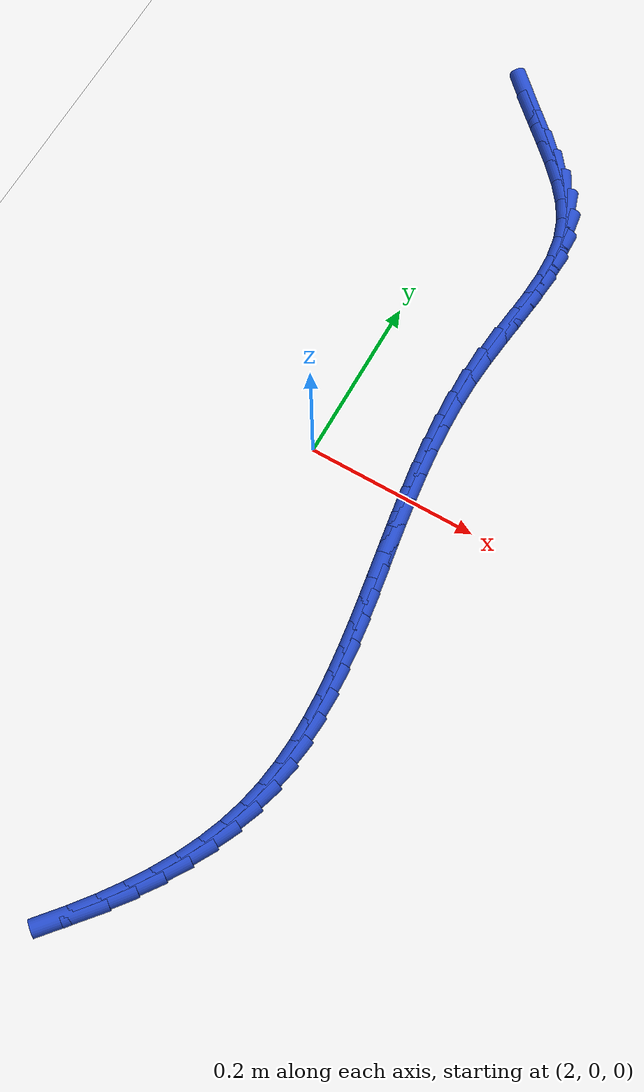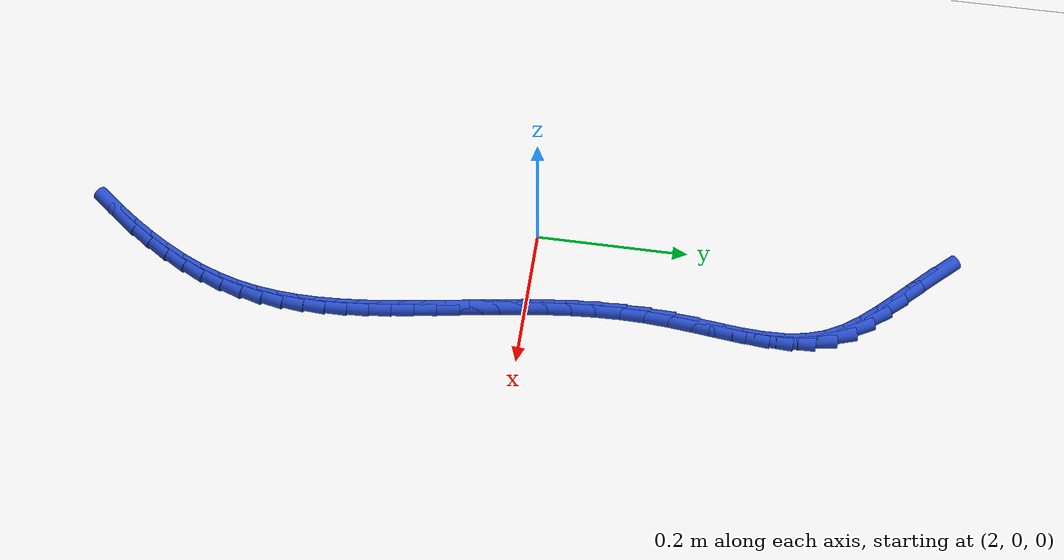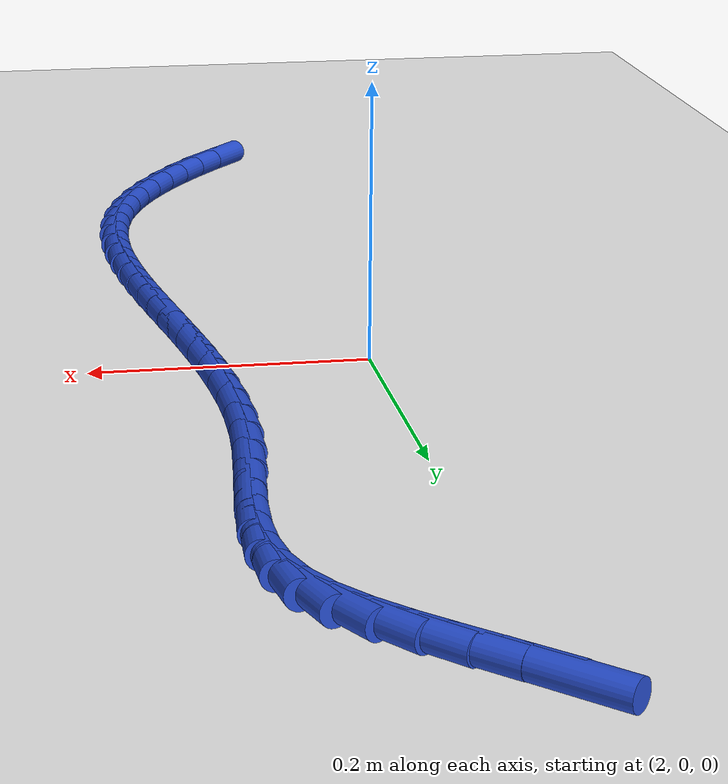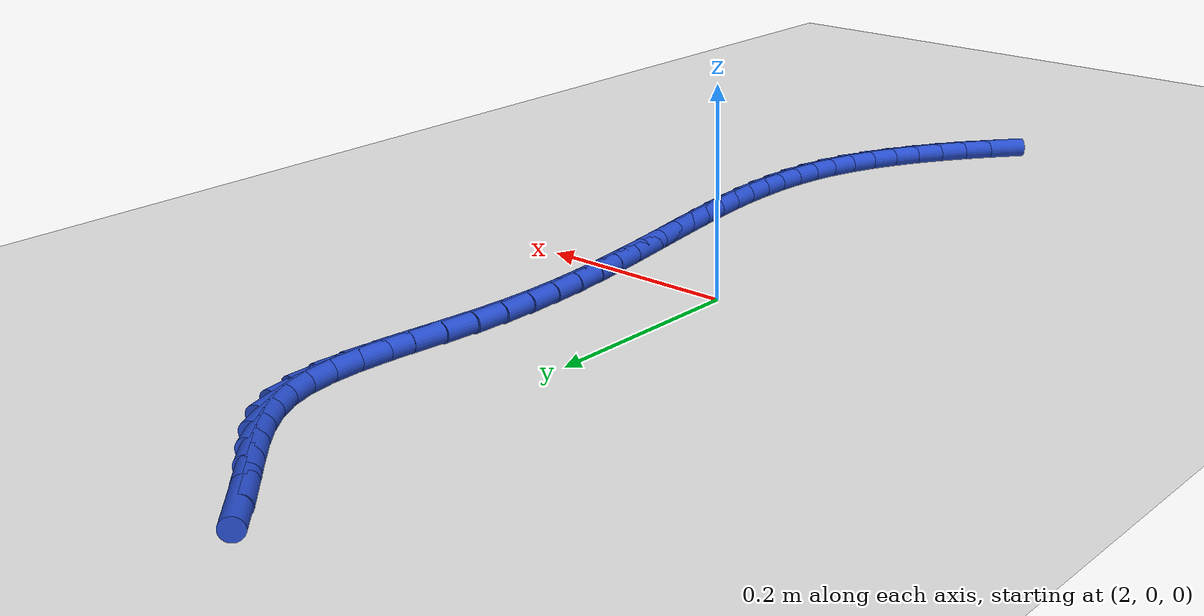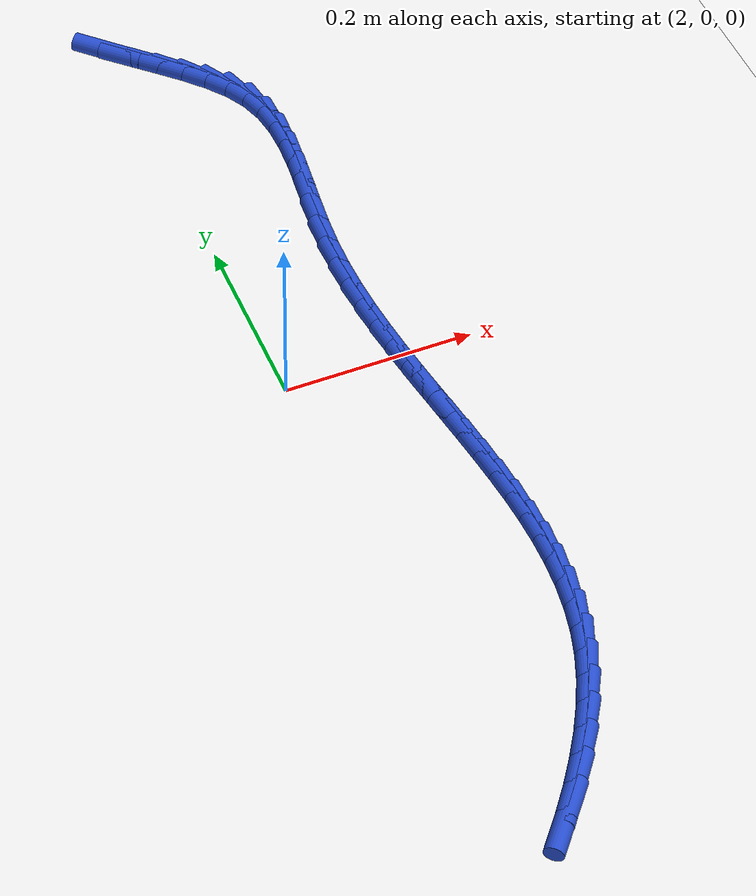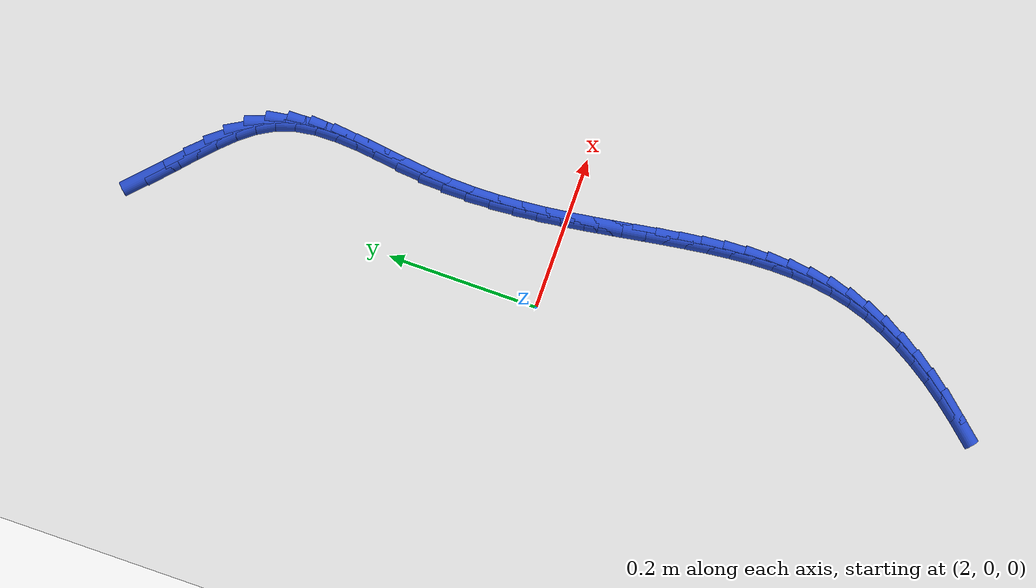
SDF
<sdf version="1.6">
 <world name="default">
  <model name="ground_plane">
   <static>1</static>
   <link name="link">
    <collision name="collision">
     <geometry><plane><normal>0 0 1</normal><size>100 100</size></plane></geometry>
     <surface><friction><ode><mu>100</mu><mu2>50</mu2></ode></friction></surface>
    </collision>
    <visual name="visual">
     <cast_shadows>0</cast_shadows>
     <geometry><plane><normal>0 0 1</normal><size>100 100</size></plane></geometry>
     <material>
      <script><uri>file://media/materials/scripts/gazebo.material</uri><name>Gazebo/WhiteGlow</name></script>
     </material>
    </visual>
   </link>
  </model>
  <model name="line">
   <link name="link_98">
    <pose>1.9974804014418164 0.5232878852142969 0.01 0 1.57 -0.772798423171073</pose>
    <collision name="collision">
     <geometry><cylinder><radius>0.01</radius><length>0.08</length></cylinder></geometry>
    </collision>
    <visual name="visual">
     <material>
      <script><name>Gazebo/Blue</name><uri>file://media/materials/scripts/gazebo.material</uri></script>
     </material>
     <geometry><cylinder><radius>0.01</radius><length>0.08</length></cylinder></geometry>
    </visual>
   </link>
   <link name="link_99">
    <pose>2.020182870469567 0.501150417638479 0.01 0 1.57 -0.7526908563152813</pose>
    <collision name="collision">
     <geometry><cylinder><radius>0.01</radius><length>0.08</length></cylinder></geometry>
    </collision>
    <visual name="visual">
     <material>
      <script><name>Gazebo/Blue</name><uri>file://media/materials/scripts/gazebo.material</uri></script>
     </material>
     <geometry><cylinder><radius>0.01</radius><length>0.08</length></cylinder></geometry>
    </visual>
   </link>
   <link name="link_100">
    <pose>2.042690988884643 0.4800685198794431 0.01 0 1.57 -0.7668037822693868</pose>
    <collision name="collision">
     <geometry><cylinder><radius>0.01</radius><length>0.08</length></cylinder></geometry>
    </collision>
    <visual name="visual">
     <material>
      <script><name>Gazebo/Blue</name><uri>file://media/materials/scripts/gazebo.material</uri></script>
     </material>
     <geometry><cylinder><radius>0.01</radius><length>0.08</length></cylinder></geometry>
    </visual>
   </link>
   <link name="link_101">
    <pose>2.0641158773151096 0.4594259401484818 0.01 0 1.57 -0.8193224816827909</pose>
    <collision name="collision">
     <geometry><cylinder><radius>0.01</radius><length>0.08</length></cylinder></geometry>
    </collision>
    <visual name="visual">
     <material>
      <script><name>Gazebo/Blue</name><uri>file://media/materials/scripts/gazebo.material</uri></script>
     </material>
     <geometry><cylinder><radius>0.01</radius><length>0.08</length></cylinder></geometry>
    </visual>
   </link>
   <link name="link_102">
    <pose>2.0835686563890303 0.438606426656886 0.01 0 1.57 -0.9160712359983348</pose>
    <collision name="collision">
     <geometry><cylinder><radius>0.01</radius><length>0.08</length></cylinder></geometry>
    </collision>
    <visual name="visual">
     <material>
      <script><name>Gazebo/Blue</name><uri>file://media/materials/scripts/gazebo.material</uri></script>
     </material>
     <geometry><cylinder><radius>0.01</radius><length>0.08</length></cylinder></geometry>
    </visual>
   </link>
   <link name="link_103">
    <pose>2.1001604467344688 0.41699372761594733 0.01 0 1.57 -1.0619785790174059</pose>
    <collision name="collision">
     <geometry><cylinder><radius>0.01</radius><length>0.08</length></cylinder></geometry>
    </collision>
    <visual name="visual">
     <material>
      <script><name>Gazebo/Blue</name><uri>file://media/materials/scripts/gazebo.material</uri></script>
     </material>
     <geometry><cylinder><radius>0.01</radius><length>0.08</length></cylinder></geometry>
    </visual>
   </link>
   <link name="link_104">
    <pose>2.11300236897949 0.3939715912369574 0.01 0 1.57 -1.2501283929838973</pose>
    <collision name="collision">
     <geometry><cylinder><radius>0.01</radius><length>0.08</length></cylinder></geometry>
    </collision>
    <visual name="visual">
     <material>
      <script><name>Gazebo/Blue</name><uri>file://media/materials/scripts/gazebo.material</uri></script>
     </material>
     <geometry><cylinder><radius>0.01</radius><length>0.08</length></cylinder></geometry>
    </visual>
   </link>
   <link name="link_105">
    <pose>2.121304404408173 0.3689753125034567 0.01 0 1.57 -1.4225068493767916</pose>
    <collision name="collision">
     <geometry><cylinder><radius>0.01</radius><length>0.08</length></cylinder></geometry>
    </collision>
    <visual name="visual">
     <material>
      <script><name>Gazebo/Blue</name><uri>file://media/materials/scripts/gazebo.material</uri></script>
     </material>
     <geometry><cylinder><radius>0.01</radius><length>0.08</length></cylinder></geometry>
    </visual>
   </link>
   <link name="link_106">
    <pose>2.12533530030739 0.3419922358411878 0.01 0 1.57 -1.547380481768796</pose>
    <collision name="collision">
     <geometry><cylinder><radius>0.01</radius><length>0.08</length></cylinder></geometry>
    </collision>
    <visual name="visual">
     <material>
      <script><name>Gazebo/Blue</name><uri>file://media/materials/scripts/gazebo.material</uri></script>
     </material>
     <geometry><cylinder><radius>0.01</radius><length>0.08</length></cylinder></geometry>
    </visual>
   </link>
   <link name="link_107">
    <pose>2.1260062298533713 0.313344671903507 0.01 0 1.57 1.5118737533773696</pose>
    <collision name="collision">
     <geometry><cylinder><radius>0.01</radius><length>0.08</length></cylinder></geometry>
    </collision>
    <visual name="visual">
     <material>
      <script><name>Gazebo/Blue</name><uri>file://media/materials/scripts/gazebo.material</uri></script>
     </material>
     <geometry><cylinder><radius>0.01</radius><length>0.08</length></cylinder></geometry>
    </visual>
   </link>
   <link name="link_108">
    <pose>2.1242373867607767 0.2833596347278914 0.01 0 1.57 1.4650981746025995</pose>
    <collision name="collision">
     <geometry><cylinder><radius>0.01</radius><length>0.08</length></cylinder></geometry>
    </collision>
    <visual name="visual">
     <material>
      <script><name>Gazebo/Blue</name><uri>file://media/materials/scripts/gazebo.material</uri></script>
     </material>
     <geometry><cylinder><radius>0.01</radius><length>0.08</length></cylinder></geometry>
    </visual>
   </link>
   <link name="link_109">
    <pose>2.120948964744261 0.2523641383518191 0.01 0 1.57 1.4486816720896407</pose>
    <collision name="collision">
     <geometry><cylinder><radius>0.01</radius><length>0.08</length></cylinder></geometry>
    </collision>
    <visual name="visual">
     <material>
      <script><name>Gazebo/Blue</name><uri>file://media/materials/scripts/gazebo.material</uri></script>
     </material>
     <geometry><cylinder><radius>0.01</radius><length>0.08</length></cylinder></geometry>
    </visual>
   </link>
   <link name="link_110">
    <pose>2.1170611575184846 0.2206851968127675 0.01 0 1.57 1.4599074536485734</pose>
    <collision name="collision">
     <geometry><cylinder><radius>0.01</radius><length>0.08</length></cylinder></geometry>
    </collision>
    <visual name="visual">
     <material>
      <script><name>Gazebo/Blue</name><uri>file://media/materials/scripts/gazebo.material</uri></script>
     </material>
     <geometry><cylinder><radius>0.01</radius><length>0.08</length></cylinder></geometry>
    </visual>
   </link>
   <link name="link_111">
    <pose>2.1134941587981024 0.1886498241482138 0.01 0 1.57 1.4979544471800086</pose>
    <collision name="collision">
     <geometry><cylinder><radius>0.01</radius><length>0.08</length></cylinder></geometry>
    </collision>
    <visual name="visual">
     <material>
      <script><name>Gazebo/Blue</name><uri>file://media/materials/scripts/gazebo.material</uri></script>
     </material>
     <geometry><cylinder><radius>0.01</radius><length>0.08</length></cylinder></geometry>
    </visual>
   </link>
   <link name="link_112">
    <pose>2.1111540775280315 0.1565811702202253 0.01 0 1.57 1.5490121632377298</pose>
    <collision name="collision">
     <geometry><cylinder><radius>0.01</radius><length>0.08</length></cylinder></geometry>
    </collision>
    <visual name="visual">
     <material>
      <script><name>Gazebo/Blue</name><uri>file://media/materials/scripts/gazebo.material</uri></script>
     </material>
     <geometry><cylinder><radius>0.01</radius><length>0.08</length></cylinder></geometry>
    </visual>
   </link>
   <link name="link_113">
    <pose>2.1104587752645623 0.12466843356701249 0.01 0 1.57 -1.5466806003966178</pose>
    <collision name="collision">
     <geometry><cylinder><radius>0.01</radius><length>0.08</length></cylinder></geometry>
    </collision>
    <visual name="visual">
     <material>
      <script><name>Gazebo/Blue</name><uri>file://media/materials/scripts/gazebo.material</uri></script>
     </material>
     <geometry><cylinder><radius>0.01</radius><length>0.08</length></cylinder></geometry>
    </visual>
   </link>
   <link name="link_114">
    <pose>2.111224182243381 0.092935672064192 0.01 0 1.57 -1.5073122808408284</pose>
    <collision name="collision">
     <geometry><cylinder><radius>0.01</radius><length>0.08</length></cylinder></geometry>
    </collision>
    <visual name="visual">
     <material>
      <script><name>Gazebo/Blue</name><uri>file://media/materials/scripts/gazebo.material</uri></script>
     </material>
     <geometry><cylinder><radius>0.01</radius><length>0.08</length></cylinder></geometry>
    </visual>
   </link>
   <link name="link_115">
    <pose>2.1132290943956007 0.06139675574127308 0.01 0 1.57 -1.474602039594146</pose>
    <collision name="collision">
     <geometry><cylinder><radius>0.01</radius><length>0.08</length></cylinder></geometry>
    </collision>
    <visual name="visual">
     <material>
      <script><name>Gazebo/Blue</name><uri>file://media/materials/scripts/gazebo.material</uri></script>
     </material>
     <geometry><cylinder><radius>0.01</radius><length>0.08</length></cylinder></geometry>
    </visual>
   </link>
   <link name="link_116">
    <pose>2.1162523076523385 0.03006555462776598 0.01 0 1.57 -1.4486065030530517</pose>
    <collision name="collision">
     <geometry><cylinder><radius>0.01</radius><length>0.08</length></cylinder></geometry>
    </collision>
    <visual name="visual">
     <material>
      <script><name>Gazebo/Blue</name><uri>file://media/materials/scripts/gazebo.material</uri></script>
     </material>
     <geometry><cylinder><radius>0.01</radius><length>0.08</length></cylinder></geometry>
    </visual>
   </link>
   <link name="link_117">
    <pose>2.1200726179447065 -0.0010440612468201691 0.01 0 1.57 -1.4293561011399167</pose>
    <collision name="collision">
     <geometry><cylinder><radius>0.01</radius><length>0.08</length></cylinder></geometry>
    </collision>
    <visual name="visual">
     <material>
      <script><name>Gazebo/Blue</name><uri>file://media/materials/scripts/gazebo.material</uri></script>
     </material>
     <geometry><cylinder><radius>0.01</radius><length>0.08</length></cylinder></geometry>
    </visual>
   </link>
   <link name="link_118">
    <pose>2.1244688212038216 -0.03191822185297585 0.01 0 1.57 -1.4168911195819356</pose>
    <collision name="collision">
     <geometry><cylinder><radius>0.01</radius><length>0.08</length></cylinder></geometry>
    </collision>
    <visual name="visual">
     <material>
      <script><name>Gazebo/Blue</name><uri>file://media/materials/scripts/gazebo.material</uri></script>
     </material>
     <geometry><cylinder><radius>0.01</radius><length>0.08</length></cylinder></geometry>
    </visual>
   </link>
   <link name="link_119">
    <pose>2.129219713360798 -0.06254305716119193 0.01 0 1.57 -1.4112896866688427</pose>
    <collision name="collision">
     <geometry><cylinder><radius>0.01</radius><length>0.08</length></cylinder></geometry>
    </collision>
    <visual name="visual">
     <material>
      <script><name>Gazebo/Blue</name><uri>file://media/materials/scripts/gazebo.material</uri></script>
     </material>
     <geometry><cylinder><radius>0.01</radius><length>0.08</length></cylinder></geometry>
    </visual>
   </link>
   <link name="link_120">
    <pose>2.1341040903467485 -0.09290469714195809 0.01 0 1.57 -1.412688003875985</pose>
    <collision name="collision">
     <geometry><cylinder><radius>0.01</radius><length>0.08</length></cylinder></geometry>
    </collision>
    <visual name="visual">
     <material>
      <script><name>Gazebo/Blue</name><uri>file://media/materials/scripts/gazebo.material</uri></script>
     </material>
     <geometry><cylinder><radius>0.01</radius><length>0.08</length></cylinder></geometry>
    </visual>
   </link>
   <link name="link_121">
    <pose>2.1389007480927917 -0.12298927176576521 0.01 0 1.57 -1.4212929721433232</pose>
    <collision name="collision">
     <geometry><cylinder><radius>0.01</radius><length>0.08</length></cylinder></geometry>
    </collision>
    <visual name="visual">
     <material>
      <script><name>Gazebo/Blue</name><uri>file://media/materials/scripts/gazebo.material</uri></script>
     </material>
     <geometry><cylinder><radius>0.01</radius><length>0.08</length></cylinder></geometry>
    </visual>
   </link>
   <link name="link_122">
    <pose>2.1433884825300398 -0.1527829110031038 0.01 0 1.57 -1.4373865155164576</pose>
    <collision name="collision">
     <geometry><cylinder><radius>0.01</radius><length>0.08</length></cylinder></geometry>
    </collision>
    <visual name="visual">
     <material>
      <script><name>Gazebo/Blue</name><uri>file://media/materials/scripts/gazebo.material</uri></script>
     </material>
     <geometry><cylinder><radius>0.01</radius><length>0.08</length></cylinder></geometry>
    </visual>
   </link>
   <link name="link_123">
    <pose>2.147346089589607 -0.18227174482446423 0.01 0 1.57 -1.4613195091240843</pose>
    <collision name="collision">
     <geometry><cylinder><radius>0.01</radius><length>0.08</length></cylinder></geometry>
    </collision>
    <visual name="visual">
     <material>
      <script><name>Gazebo/Blue</name><uri>file://media/materials/scripts/gazebo.material</uri></script>
     </material>
     <geometry><cylinder><radius>0.01</radius><length>0.08</length></cylinder></geometry>
    </visual>
   </link>
   <link name="link_124">
    <pose>2.15055236520261 -0.21144190320033715 0.01 0 1.57 -1.493491430367638</pose>
    <collision name="collision">
     <geometry><cylinder><radius>0.01</radius><length>0.08</length></cylinder></geometry>
    </collision>
    <visual name="visual">
     <material>
      <script><name>Gazebo/Blue</name><uri>file://media/materials/scripts/gazebo.material</uri></script>
     </material>
     <geometry><cylinder><radius>0.01</radius><length>0.08</length></cylinder></geometry>
    </visual>
   </link>
   <link name="link_125">
    <pose>2.1527861053001622 -0.24027951610121367 0.01 0 1.57 -1.5343100058795625</pose>
    <collision name="collision">
     <geometry><cylinder><radius>0.01</radius><length>0.08</length></cylinder></geometry>
    </collision>
    <visual name="visual">
     <material>
      <script><name>Gazebo/Blue</name><uri>file://media/materials/scripts/gazebo.material</uri></script>
     </material>
     <geometry><cylinder><radius>0.01</radius><length>0.08</length></cylinder></geometry>
    </visual>
   </link>
   <link name="link_126">
    <pose>2.153826105813379 -0.2687707134975827 0.01 0 1.57 1.5574686059792953</pose>
    <collision name="collision">
     <geometry><cylinder><radius>0.01</radius><length>0.08</length></cylinder></geometry>
    </collision>
    <visual name="visual">
     <material>
      <script><name>Gazebo/Blue</name><uri>file://media/materials/scripts/gazebo.material</uri></script>
     </material>
     <geometry><cylinder><radius>0.01</radius><length>0.08</length></cylinder></geometry>
    </visual>
   </link>
   <link name="link_127">
    <pose>2.153451162673375 -0.29690162535993564 0.01 0 1.57 1.498468611527286</pose>
    <collision name="collision">
     <geometry><cylinder><radius>0.01</radius><length>0.08</length></cylinder></geometry>
    </collision>
    <visual name="visual">
     <material>
      <script><name>Gazebo/Blue</name><uri>file://media/materials/scripts/gazebo.material</uri></script>
     </material>
     <geometry><cylinder><radius>0.01</radius><length>0.08</length></cylinder></geometry>
    </visual>
   </link>
   <link name="link_128">
    <pose>2.151440071811265 -0.3246583816587628 0.01 0 1.57 1.430381147747992</pose>
    <collision name="collision">
     <geometry><cylinder><radius>0.01</radius><length>0.08</length></cylinder></geometry>
    </collision>
    <visual name="visual">
     <material>
      <script><name>Gazebo/Blue</name><uri>file://media/materials/scripts/gazebo.material</uri></script>
     </material>
     <geometry><cylinder><radius>0.01</radius><length>0.08</length></cylinder></geometry>
    </visual>
   </link>
   <link name="link_129">
    <pose>2.1475716291581635 -0.3520271123645548 0.01 0 1.57 1.3537404619568987</pose>
    <collision name="collision">
     <geometry><cylinder><radius>0.01</radius><length>0.08</length></cylinder></geometry>
    </collision>
    <visual name="visual">
     <material>
      <script><name>Gazebo/Blue</name><uri>file://media/materials/scripts/gazebo.material</uri></script>
     </material>
     <geometry><cylinder><radius>0.01</radius><length>0.08</length></cylinder></geometry>
    </visual>
   </link>
   <link name="link_130">
    <pose>2.141624630645186 -0.3789939474478021 0.01 0 1.57 1.2701715629852637</pose>
    <collision name="collision">
     <geometry><cylinder><radius>0.01</radius><length>0.08</length></cylinder></geometry>
    </collision>
    <visual name="visual">
     <material>
      <script><name>Gazebo/Blue</name><uri>file://media/materials/scripts/gazebo.material</uri></script>
     </material>
     <geometry><cylinder><radius>0.01</radius><length>0.08</length></cylinder></geometry>
    </visual>
   </link>
   <link name="link_131">
    <pose>2.133393166567909 -0.4055452648349263 0.01 0 1.57 1.1887319179101499</pose>
    <collision name="collision">
     <geometry><cylinder><radius>0.01</radius><length>0.08</length></cylinder></geometry>
    </collision>
    <visual name="visual">
     <material>
      <script><name>Gazebo/Blue</name><uri>file://media/materials/scripts/gazebo.material</uri></script>
     </material>
     <geometry><cylinder><radius>0.01</radius><length>0.08</length></cylinder></geometry>
    </visual>
   </link>
   <link name="link_132">
    <pose>2.122895594067316 -0.43167107832061974 0.01 0 1.57 1.1156394698917436</pose>
    <collision name="collision">
     <geometry><cylinder><radius>0.01</radius><length>0.08</length></cylinder></geometry>
    </collision>
    <visual name="visual">
     <material>
      <script><name>Gazebo/Blue</name><uri>file://media/materials/scripts/gazebo.material</uri></script>
     </material>
     <geometry><cylinder><radius>0.01</radius><length>0.08</length></cylinder></geometry>
    </visual>
   </link>
   <link name="link_133">
    <pose>2.1103205974140464 -0.4573641630841429 0.01 0 1.57 1.0507823627539592</pose>
    <collision name="collision">
     <geometry><cylinder><radius>0.01</radius><length>0.08</length></cylinder></geometry>
    </collision>
    <visual name="visual">
     <material>
      <script><name>Gazebo/Blue</name><uri>file://media/materials/scripts/gazebo.material</uri></script>
     </material>
     <geometry><cylinder><radius>0.01</radius><length>0.08</length></cylinder></geometry>
    </visual>
   </link>
   <link name="link_134">
    <pose>2.095861110689552 -0.48261736320371684 0.01 0 1.57 0.9936552229996249</pose>
    <collision name="collision">
     <geometry><cylinder><radius>0.01</radius><length>0.08</length></cylinder></geometry>
    </collision>
    <visual name="visual">
     <material>
      <script><name>Gazebo/Blue</name><uri>file://media/materials/scripts/gazebo.material</uri></script>
     </material>
     <geometry><cylinder><radius>0.01</radius><length>0.08</length></cylinder></geometry>
    </visual>
   </link>
   <link name="link_135">
    <pose>2.0797100679752822 -0.5074235227575622 0.01 0 1.57 0.9436364225810312</pose>
    <collision name="collision">
     <geometry><cylinder><radius>0.01</radius><length>0.08</length></cylinder></geometry>
    </collision>
    <visual name="visual">
     <material>
      <script><name>Gazebo/Blue</name><uri>file://media/materials/scripts/gazebo.material</uri></script>
     </material>
     <geometry><cylinder><radius>0.01</radius><length>0.08</length></cylinder></geometry>
    </visual>
   </link>
   <link name="link_136">
    <pose>2.06206040335269 -0.5317754858239001 0.01 0 1.57 0.9000788299769342</pose>
    <collision name="collision">
     <geometry><cylinder><radius>0.01</radius><length>0.08</length></cylinder></geometry>
    </collision>
    <visual name="visual">
     <material>
      <script><name>Gazebo/Blue</name><uri>file://media/materials/scripts/gazebo.material</uri></script>
     </material>
     <geometry><cylinder><radius>0.01</radius><length>0.08</length></cylinder></geometry>
    </visual>
   </link>
   <link name="link_137">
    <pose>2.0431050509032267 -0.555666096480951 0.01 0 1.57 0.862366530726207</pose>
    <collision name="collision">
     <geometry><cylinder><radius>0.01</radius><length>0.08</length></cylinder></geometry>
    </collision>
    <visual name="visual">
     <material>
      <script><name>Gazebo/Blue</name><uri>file://media/materials/scripts/gazebo.material</uri></script>
     </material>
     <geometry><cylinder><radius>0.01</radius><length>0.08</length></cylinder></geometry>
    </visual>
   </link>
  </model>
 </world>
</sdf>
